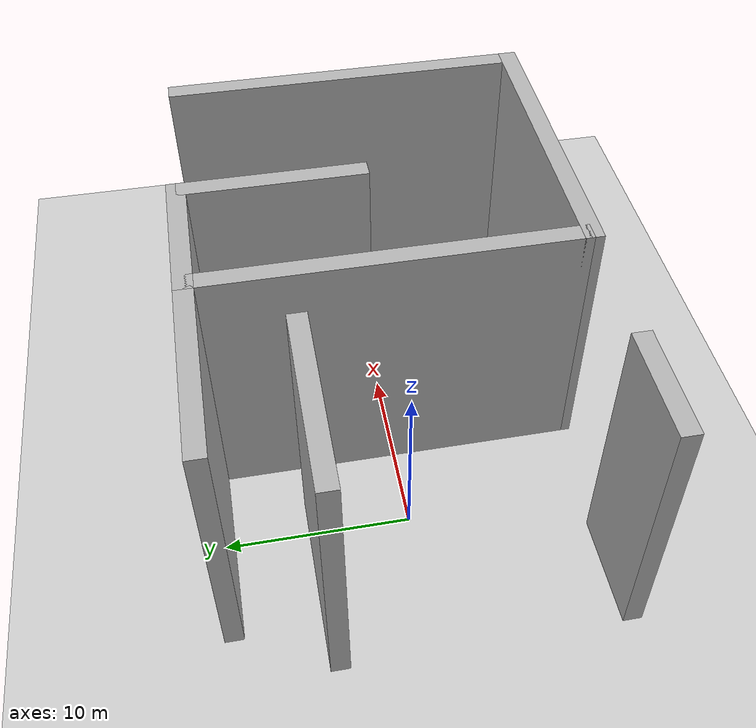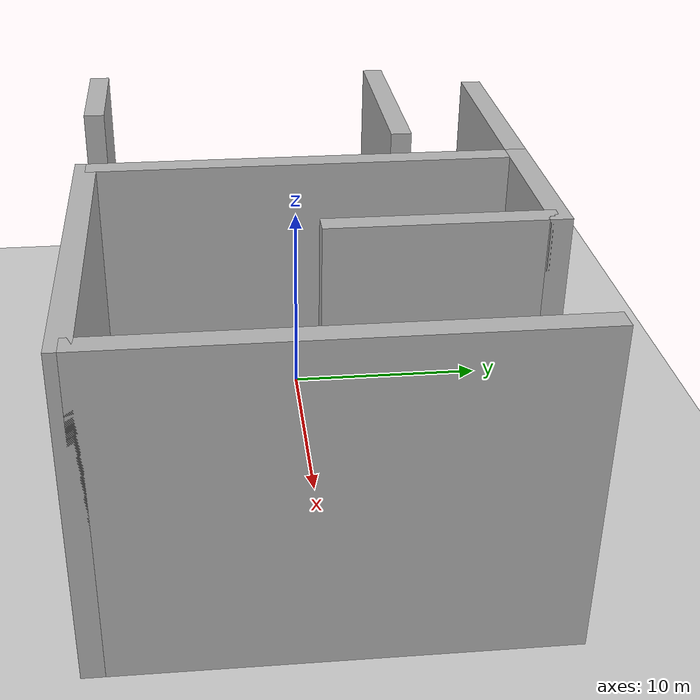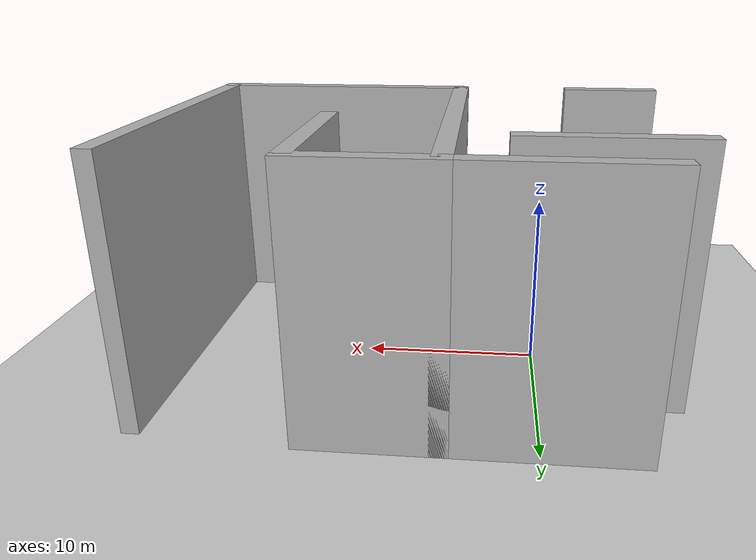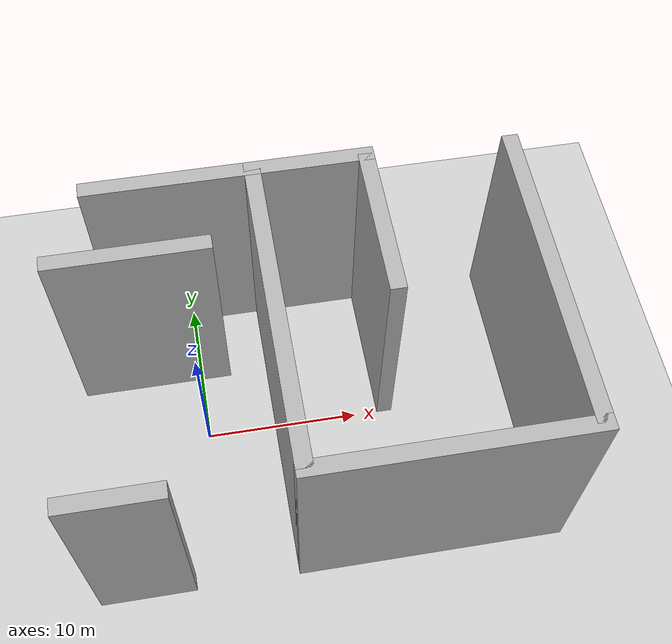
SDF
<?xml version="1.0" encoding="UTF-8"?>
<sdf version="1.9">
  <world name="labirinth">
    <physics type="ode">
      <max_step_size>0.004</max_step_size>
      <real_time_factor>1.0</real_time_factor>
      <real_time_update_rate>250</real_time_update_rate>
    </physics>
    <gravity>0 0 -9.8</gravity>
    <magnetic_field>6e-06 2.3e-05 -4.2e-05</magnetic_field>
    <atmosphere type="adiabatic"/>
    <scene>
      <grid>false</grid>
      <ambient>0.4 0.4 0.4 1</ambient>
      <background>0.7 0.7 0.7 1</background>
      <shadows>true</shadows>
    </scene>
    <model name="ground_plane">
      <static>true</static>
      <link name="link">
        <collision name="collision">
          <geometry>
            <plane>
              <normal>0 0 1</normal>
              <size>1 1</size>
            </plane>
          </geometry>
          <surface>
            <friction>
              <ode/>
            </friction>
            <bounce/>
            <contact/>
          </surface>
        </collision>
        <visual name="visual">
          <geometry>
            <plane>
              <normal>0 0 1</normal>
              <size>100 100</size>
            </plane>
          </geometry>
          <material>
            <ambient>0.8 0.8 0.8 1</ambient>
            <diffuse>0.8 0.8 0.8 1</diffuse>
            <specular>0.8 0.8 0.8 1</specular>
          </material>
        </visual>
        <pose>0 0 0 0 -0 0</pose>
        <inertial>
          <pose>0 0 0 0 -0 0</pose>
          <mass>1</mass>
          <inertia>
            <ixx>1</ixx>
            <ixy>0</ixy>
            <ixz>0</ixz>
            <iyy>1</iyy>
            <iyz>0</iyz>
            <izz>1</izz>
          </inertia>
        </inertial>
        <enable_wind>false</enable_wind>
      </link>
      <pose>0 0 0 0 -0 0</pose>
      <self_collide>false</self_collide>
    </model>
    <light name="sunUTC" type="directional">
      <pose>0 0 500 0 -0 0</pose>
      <cast_shadows>true</cast_shadows>
      <intensity>1</intensity>
      <direction>0.001 0.625 -0.78</direction>
      <diffuse>0.904 0.904 0.904 1</diffuse>
      <specular>0.271 0.271 0.271 1</specular>
      <attenuation>
        <range>2000</range>
        <linear>0</linear>
        <constant>1</constant>
        <quadratic>0</quadratic>
      </attenuation>
      <spot>
        <inner_angle>0</inner_angle>
        <outer_angle>0</outer_angle>
        <falloff>0</falloff>
      </spot>
    </light>
    <spherical_coordinates>
      <surface_model>EARTH_WGS84</surface_model>
      <world_frame_orientation>ENU</world_frame_orientation>
      <latitude_deg>47.397971057728974</latitude_deg>
      <longitude_deg> 8.546163739800146</longitude_deg>
      <elevation>0</elevation>
    </spherical_coordinates>
    <model name="box1">
      <pose>5 0 7.5 0 0 0</pose>
      <static>true</static>
      <link name="link1">
      <collision name="collision">
        <geometry>
          <box>
            <size>1 20 15</size>
          </box>
        </geometry>
      </collision>
      <visual name="visual">
        <geometry>
          <box>
            <size>1 20 15</size>
          </box>
        </geometry>
        <material>
          <ambient>0.3 0.3 0.3 1</ambient>
          <diffuse>0.7 0.7 0.7 1</diffuse>
          <specular>1 1 1 1</specular>
        </material>
      </visual>
      </link>
    </model>
    <model name="box2">
      <static>true</static>
      <pose>-3 5 7.5 0 0 0</pose>
      <link name="link2">
      <collision name="collision">
        <geometry>
          <box>
            <size>10 1 15</size>
          </box>
        </geometry>
      </collision>
      <visual name="visual">
        <geometry>
          <box>
            <size>10 1 15</size>
          </box>
        </geometry>
        <material>
          <ambient>0.3 0.3 0.3 1</ambient>
          <diffuse>0.7 0.7 0.7 1</diffuse>
          <specular>1 1 1 1</specular>
        </material>
      </visual>
      </link>
    </model>
    <model name="box3">
      <static>true</static>
      <pose>13 -10 7.5 0 0 0</pose>
      <link name="link3">
      <collision name="collision">
        <geometry>
          <box>
            <size>17 1 15</size>
          </box>
        </geometry>
      </collision>
      <visual name="visual">
        <geometry>
          <box>
            <size>17 1 15</size>
          </box>
        </geometry>
        <material>
          <ambient>0.3 0.3 0.3 1</ambient>
          <diffuse>0.7 0.7 0.7 1</diffuse>
          <specular>1 1 1 1</specular>
        </material>
      </visual>
      </link>
    </model>
    <model name="box4">
      <pose>12 5 7.5 0 0 0</pose>
      <static>true</static>
      <link name="link4">
      <collision name="collision">
        <geometry>
          <box>
            <size>1 10 15</size>
          </box>
        </geometry>
      </collision>
      <visual name="visual">
        <geometry>
          <box>
            <size>1 10 15</size>
          </box>
        </geometry>
        <material>
          <ambient>0.3 0.3 0.3 1</ambient>
          <diffuse>0.7 0.7 0.7 1</diffuse>
          <specular>1 1 1 1</specular>
        </material>
      </visual>
      </link>
    </model>
    <model name="box5">
      <pose>-5 -10 7.5 0 0 0</pose>
      <static>true</static>
      <link name="link5">
      <collision name="collision">
        <geometry>
          <box>
            <size>6 1 15</size>
          </box>
        </geometry>
      </collision>
      <visual name="visual">
        <geometry>
          <box>
            <size>6 1 15</size>
          </box>
        </geometry>
        <material>
          <ambient>0.3 0.3 0.3 1</ambient>
          <diffuse>0.7 0.7 0.7 1</diffuse>
          <specular>1 1 1 1</specular>
        </material>
      </visual>
      </link>
    </model>
    <model name="box6">
      <pose>0 10 7.5 0 0 0</pose>
      <static>true</static>
      <link name="link6">
      <collision name="collision">
        <geometry>
          <box>
            <size>11 1 15</size>
          </box>
        </geometry>
      </collision>
      <visual name="visual">
        <geometry>
          <box>
            <size>11 1 15</size>
          </box>
        </geometry>
        <material>
          <ambient>0.3 0.3 0.3 1</ambient>
          <diffuse>0.7 0.7 0.7 1</diffuse>
          <specular>1 1 1 1</specular>
        </material>
      </visual>
      </link>
    </model>
    <model name="box7">
      <pose>21 0 7.5 0 0 0</pose>
      <static>true</static>
      <link name="link7">
      <collision name="collision">
        <geometry>
          <box>
            <size>1 20 15</size>
          </box>
        </geometry>
      </collision>
      <visual name="visual">
        <geometry>
          <box>
            <size>1 20 15</size>
          </box>
        </geometry>
        <material>
          <ambient>0.3 0.3 0.3 1</ambient>
          <diffuse>0.7 0.7 0.7 1</diffuse>
          <specular>1 1 1 1</specular>
        </material>
      </visual>
      </link>
    </model>
    <model name="box8">
      <pose>8.5 10 7.5 0 0 0</pose>
      <static>true</static>
      <link name="link8">
      <collision name="collision">
        <geometry>
          <box>
            <size>11 1 15</size>
          </box>
        </geometry>
      </collision>
      <visual name="visual">
        <geometry>
          <box>
            <size>8 1 15</size>
          </box>
        </geometry>
        <material>
          <ambient>0.3 0.3 0.3 1</ambient>
          <diffuse>0.7 0.7 0.7 1</diffuse>
          <specular>1 1 1 1</specular>
        </material>
      </visual>
      </link>
    </model>
  </world>
</sdf>
